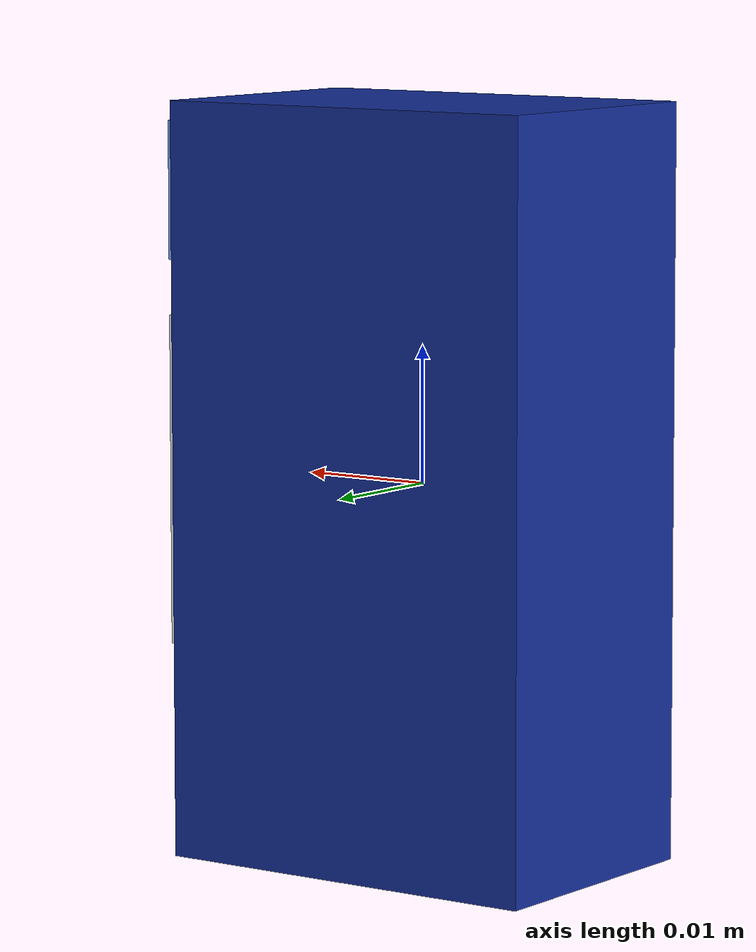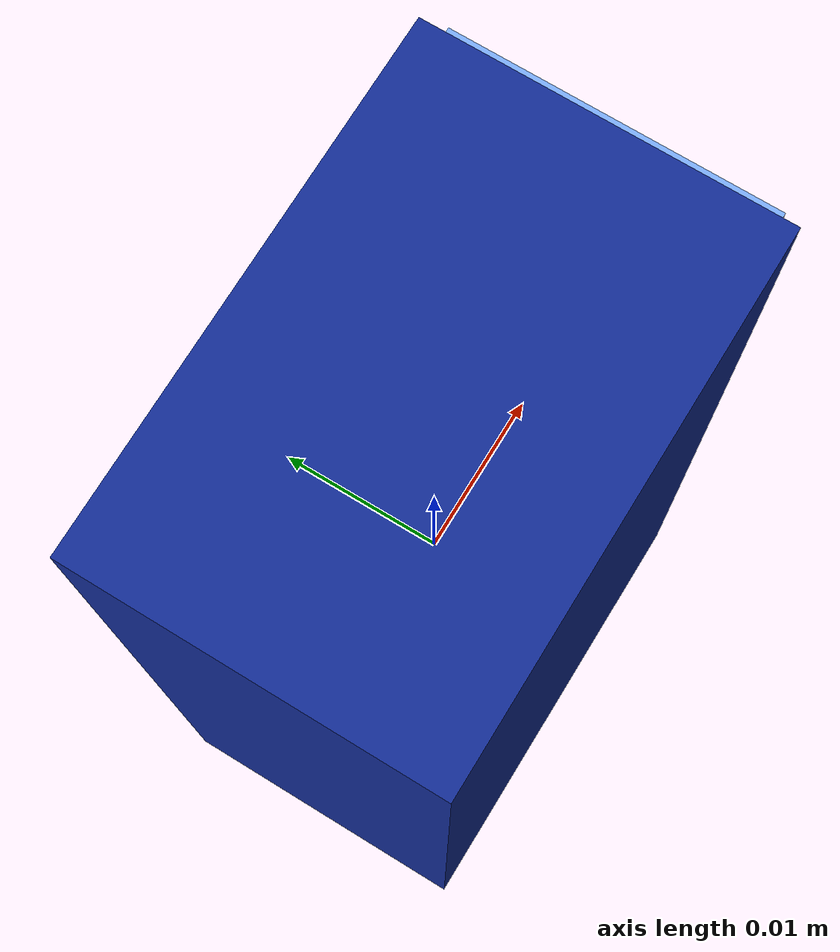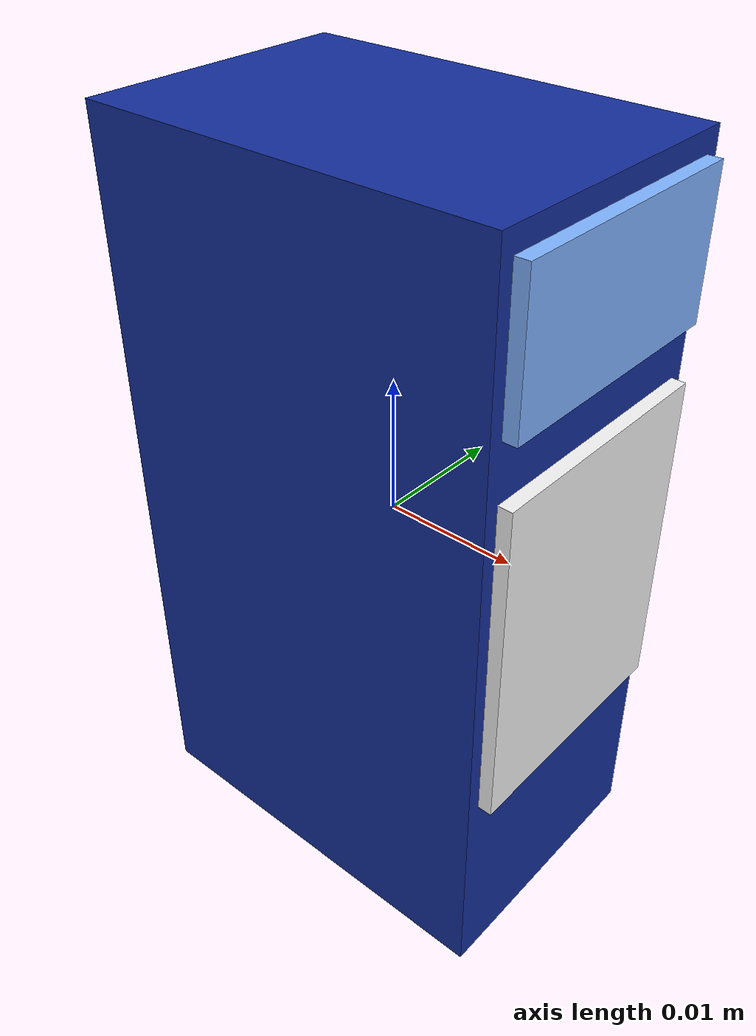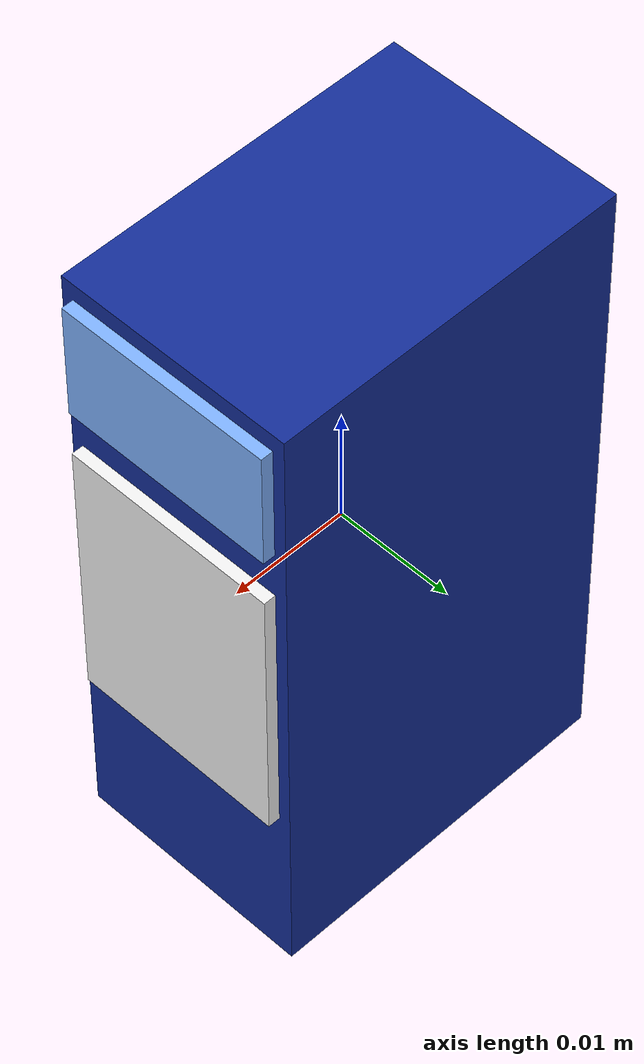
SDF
<?xml version="1.0" ?>
<sdf version="1.6">
  <!--
    Blue tablet box  -  SMALL  0.030(x) x 0.020(y) x 0.055(z) m
    y = 20 mm  ->  well within ~30 mm gripper opening
    Mass 35 g
  -->
  <model name="medicine_packet_a">
    <static>false</static>
    <link name="link">
      <inertial>
        <mass>0.035</mass>
        <inertia>
          <ixx>0.000010</ixx><ixy>0</ixy><ixz>0</ixz>
          <iyy>0.000011</iyy><iyz>0</iyz>
          <izz>0.0000038</izz>
        </inertia>
      </inertial>
      <collision name="col">
        <geometry><box><size>0.030 0.020 0.055</size></box></geometry>
        <surface><friction><ode><mu>0.9</mu><mu2>0.9</mu2></ode></friction></surface>
      </collision>
      <!-- Main body - dark blue -->
      <visual name="body">
        <geometry><box><size>0.030 0.020 0.055</size></box></geometry>
        <material>
          <ambient>0.08 0.18 0.60 1</ambient>
          <diffuse>0.08 0.18 0.60 1</diffuse>
          <specular>0.2 0.2 0.35 1</specular>
        </material>
      </visual>
      <!-- White label band -->
      <visual name="label">
        <pose>0.0155 0 0 0 0 0</pose>
        <geometry><box><size>0.001 0.018 0.024</size></box></geometry>
        <material><ambient>0.95 0.95 0.95 1</ambient><diffuse>0.95 0.95 0.95 1</diffuse></material>
      </visual>
      <!-- Light-blue top stripe -->
      <visual name="stripe_top">
        <pose>0.0155 0 0.021 0 0 0</pose>
        <geometry><box><size>0.001 0.018 0.010</size></box></geometry>
        <material><ambient>0.50 0.70 1.0 1</ambient><diffuse>0.50 0.70 1.0 1</diffuse></material>
      </visual>
    </link>
  </model>
</sdf>
